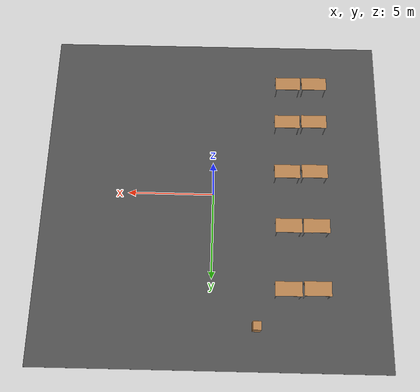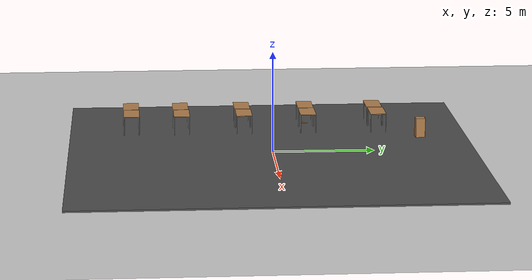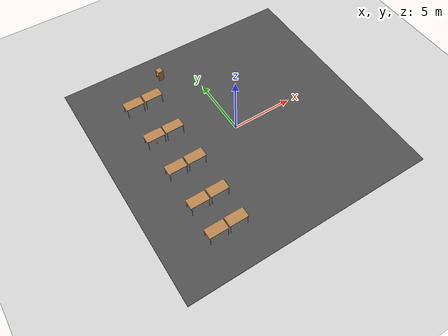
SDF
<sdf version="1.7">
 <world name="default">
  <model name="ground_plane">
   <static>1</static>
   <link name="link">
    <collision name="collision">
     <geometry><plane><normal>0 0 1</normal><size>100 100</size></plane></geometry>
     <surface>
      <contact><collide_bitmask>65535</collide_bitmask></contact>
      <friction><ode><mu>100</mu><mu2>50</mu2></ode></friction>
     </surface>
    </collision>
    <visual name="visual">
     <cast_shadows>0</cast_shadows>
     <geometry><plane><normal>0 0 1</normal><size>100 100</size></plane></geometry>
     <material>
      <script><uri>file://media/materials/scripts/gazebo.material</uri><name>Gazebo/Grey</name></script>
     </material>
    </visual>
   </link>
  </model>
  <model name="asphalt_plane">
   <static>1</static>
   <link name="link">
    <collision name="collision"><geometry><box><size>20 20 0.1</size></box></geometry></collision>
    <visual name="visual">
     <cast_shadows>0</cast_shadows>
     <geometry><box><size>20 20 0.1</size></box></geometry>
     <material>
      <script>
       <uri>model://asphalt_plane/materials/scripts</uri>
       <uri>model://asphalt_plane/materials/textures</uri>
       <name>vrc/asphalt</name>
      </script>
     </material>
    </visual>
   </link>
   <pose>0.032164 -0.016772 0 0 -0 0</pose>
  </model>
  <model name="table_4">
   <static>1</static>
   <link name="link">
    <collision name="surface">
     <pose>0 0 1 0 -0 0</pose>
     <geometry><box><size>1.5 0.8 0.03</size></box></geometry>
     <surface><friction><ode><mu>0.6</mu><mu2>0.6</mu2></ode></friction></surface>
    </collision>
    <visual name="visual1">
     <pose>0 0 1 0 -0 0</pose>
     <geometry><box><size>1.5 0.8 0.03</size></box></geometry>
     <material>
      <script><uri>file://media/materials/scripts/gazebo.material</uri><name>Gazebo/Wood</name></script>
     </material>
    </visual>
    <collision name="front_left_leg">
     <pose>0.68 0.38 0.5 0 -0 0</pose>
     <geometry><cylinder><radius>0.02</radius><length>1</length></cylinder></geometry>
    </collision>
    <visual name="front_left_leg">
     <pose>0.68 0.38 0.5 0 -0 0</pose>
     <geometry><cylinder><radius>0.02</radius><length>1</length></cylinder></geometry>
     <material>
      <script><uri>file://media/materials/scripts/gazebo.material</uri><name>Gazebo/Grey</name></script>
     </material>
    </visual>
    <collision name="front_right_leg">
     <pose>0.68 -0.38 0.5 0 -0 0</pose>
     <geometry><cylinder><radius>0.02</radius><length>1</length></cylinder></geometry>
    </collision>
    <visual name="front_right_leg">
     <pose>0.68 -0.38 0.5 0 -0 0</pose>
     <geometry><cylinder><radius>0.02</radius><length>1</length></cylinder></geometry>
     <material>
      <script><uri>file://media/materials/scripts/gazebo.material</uri><name>Gazebo/Grey</name></script>
     </material>
    </visual>
    <collision name="back_right_leg">
     <pose>-0.68 -0.38 0.5 0 -0 0</pose>
     <geometry><cylinder><radius>0.02</radius><length>1</length></cylinder></geometry>
    </collision>
    <visual name="back_right_leg">
     <pose>-0.68 -0.38 0.5 0 -0 0</pose>
     <geometry><cylinder><radius>0.02</radius><length>1</length></cylinder></geometry>
     <material>
      <script><uri>file://media/materials/scripts/gazebo.material</uri><name>Gazebo/Grey</name></script>
     </material>
    </visual>
    <collision name="back_left_leg">
     <pose>-0.68 0.38 0.5 0 -0 0</pose>
     <geometry><cylinder><radius>0.02</radius><length>1</length></cylinder></geometry>
    </collision>
    <visual name="back_left_leg">
     <pose>-0.68 0.38 0.5 0 -0 0</pose>
     <geometry><cylinder><radius>0.02</radius><length>1</length></cylinder></geometry>
     <material>
      <script><uri>file://media/materials/scripts/gazebo.material</uri><name>Gazebo/Grey</name></script>
     </material>
    </visual>
   </link>
   <pose>-5.982 -6.93187 0 0 -0 0</pose>
  </model>
  <model name="table_5">
   <static>1</static>
   <link name="link">
    <collision name="surface">
     <pose>0 0 1 0 -0 0</pose>
     <geometry><box><size>1.5 0.8 0.03</size></box></geometry>
     <surface><friction><ode><mu>0.6</mu><mu2>0.6</mu2></ode></friction></surface>
    </collision>
    <visual name="visual1">
     <pose>0 0 1 0 -0 0</pose>
     <geometry><box><size>1.5 0.8 0.03</size></box></geometry>
     <material>
      <script><uri>file://media/materials/scripts/gazebo.material</uri><name>Gazebo/Wood</name></script>
     </material>
    </visual>
    <collision name="front_left_leg">
     <pose>0.68 0.38 0.5 0 -0 0</pose>
     <geometry><cylinder><radius>0.02</radius><length>1</length></cylinder></geometry>
    </collision>
    <visual name="front_left_leg">
     <pose>0.68 0.38 0.5 0 -0 0</pose>
     <geometry><cylinder><radius>0.02</radius><length>1</length></cylinder></geometry>
     <material>
      <script><uri>file://media/materials/scripts/gazebo.material</uri><name>Gazebo/Grey</name></script>
     </material>
    </visual>
    <collision name="front_right_leg">
     <pose>0.68 -0.38 0.5 0 -0 0</pose>
     <geometry><cylinder><radius>0.02</radius><length>1</length></cylinder></geometry>
    </collision>
    <visual name="front_right_leg">
     <pose>0.68 -0.38 0.5 0 -0 0</pose>
     <geometry><cylinder><radius>0.02</radius><length>1</length></cylinder></geometry>
     <material>
      <script><uri>file://media/materials/scripts/gazebo.material</uri><name>Gazebo/Grey</name></script>
     </material>
    </visual>
    <collision name="back_right_leg">
     <pose>-0.68 -0.38 0.5 0 -0 0</pose>
     <geometry><cylinder><radius>0.02</radius><length>1</length></cylinder></geometry>
    </collision>
    <visual name="back_right_leg">
     <pose>-0.68 -0.38 0.5 0 -0 0</pose>
     <geometry><cylinder><radius>0.02</radius><length>1</length></cylinder></geometry>
     <material>
      <script><uri>file://media/materials/scripts/gazebo.material</uri><name>Gazebo/Grey</name></script>
     </material>
    </visual>
    <collision name="back_left_leg">
     <pose>-0.68 0.38 0.5 0 -0 0</pose>
     <geometry><cylinder><radius>0.02</radius><length>1</length></cylinder></geometry>
    </collision>
    <visual name="back_left_leg">
     <pose>-0.68 0.38 0.5 0 -0 0</pose>
     <geometry><cylinder><radius>0.02</radius><length>1</length></cylinder></geometry>
     <material>
      <script><uri>file://media/materials/scripts/gazebo.material</uri><name>Gazebo/Grey</name></script>
     </material>
    </visual>
   </link>
   <pose>-5.90789 -4.39985 0 0 -0 0</pose>
  </model>
  <model name="table_6">
   <static>1</static>
   <link name="link">
    <collision name="surface">
     <pose>0 0 1 0 -0 0</pose>
     <geometry><box><size>1.5 0.8 0.03</size></box></geometry>
     <surface><friction><ode><mu>0.6</mu><mu2>0.6</mu2></ode></friction></surface>
    </collision>
    <visual name="visual1">
     <pose>0 0 1 0 -0 0</pose>
     <geometry><box><size>1.5 0.8 0.03</size></box></geometry>
     <material>
      <script><uri>file://media/materials/scripts/gazebo.material</uri><name>Gazebo/Wood</name></script>
     </material>
    </visual>
    <collision name="front_left_leg">
     <pose>0.68 0.38 0.5 0 -0 0</pose>
     <geometry><cylinder><radius>0.02</radius><length>1</length></cylinder></geometry>
    </collision>
    <visual name="front_left_leg">
     <pose>0.68 0.38 0.5 0 -0 0</pose>
     <geometry><cylinder><radius>0.02</radius><length>1</length></cylinder></geometry>
     <material>
      <script><uri>file://media/materials/scripts/gazebo.material</uri><name>Gazebo/Grey</name></script>
     </material>
    </visual>
    <collision name="front_right_leg">
     <pose>0.68 -0.38 0.5 0 -0 0</pose>
     <geometry><cylinder><radius>0.02</radius><length>1</length></cylinder></geometry>
    </collision>
    <visual name="front_right_leg">
     <pose>0.68 -0.38 0.5 0 -0 0</pose>
     <geometry><cylinder><radius>0.02</radius><length>1</length></cylinder></geometry>
     <material>
      <script><uri>file://media/materials/scripts/gazebo.material</uri><name>Gazebo/Grey</name></script>
     </material>
    </visual>
    <collision name="back_right_leg">
     <pose>-0.68 -0.38 0.5 0 -0 0</pose>
     <geometry><cylinder><radius>0.02</radius><length>1</length></cylinder></geometry>
    </collision>
    <visual name="back_right_leg">
     <pose>-0.68 -0.38 0.5 0 -0 0</pose>
     <geometry><cylinder><radius>0.02</radius><length>1</length></cylinder></geometry>
     <material>
      <script><uri>file://media/materials/scripts/gazebo.material</uri><name>Gazebo/Grey</name></script>
     </material>
    </visual>
    <collision name="back_left_leg">
     <pose>-0.68 0.38 0.5 0 -0 0</pose>
     <geometry><cylinder><radius>0.02</radius><length>1</length></cylinder></geometry>
    </collision>
    <visual name="back_left_leg">
     <pose>-0.68 0.38 0.5 0 -0 0</pose>
     <geometry><cylinder><radius>0.02</radius><length>1</length></cylinder></geometry>
     <material>
      <script><uri>file://media/materials/scripts/gazebo.material</uri><name>Gazebo/Grey</name></script>
     </material>
    </visual>
   </link>
   <pose>-5.86238 -1.22885 0 0 -0 0</pose>
  </model>
  <model name="table_7">
   <static>1</static>
   <link name="link">
    <collision name="surface">
     <pose>0 0 1 0 -0 0</pose>
     <geometry><box><size>1.5 0.8 0.03</size></box></geometry>
     <surface><friction><ode><mu>0.6</mu><mu2>0.6</mu2></ode></friction></surface>
    </collision>
    <visual name="visual1">
     <pose>0 0 1 0 -0 0</pose>
     <geometry><box><size>1.5 0.8 0.03</size></box></geometry>
     <material>
      <script><uri>file://media/materials/scripts/gazebo.material</uri><name>Gazebo/Wood</name></script>
     </material>
    </visual>
    <collision name="front_left_leg">
     <pose>0.68 0.38 0.5 0 -0 0</pose>
     <geometry><cylinder><radius>0.02</radius><length>1</length></cylinder></geometry>
    </collision>
    <visual name="front_left_leg">
     <pose>0.68 0.38 0.5 0 -0 0</pose>
     <geometry><cylinder><radius>0.02</radius><length>1</length></cylinder></geometry>
     <material>
      <script><uri>file://media/materials/scripts/gazebo.material</uri><name>Gazebo/Grey</name></script>
     </material>
    </visual>
    <collision name="front_right_leg">
     <pose>0.68 -0.38 0.5 0 -0 0</pose>
     <geometry><cylinder><radius>0.02</radius><length>1</length></cylinder></geometry>
    </collision>
    <visual name="front_right_leg">
     <pose>0.68 -0.38 0.5 0 -0 0</pose>
     <geometry><cylinder><radius>0.02</radius><length>1</length></cylinder></geometry>
     <material>
      <script><uri>file://media/materials/scripts/gazebo.material</uri><name>Gazebo/Grey</name></script>
     </material>
    </visual>
    <collision name="back_right_leg">
     <pose>-0.68 -0.38 0.5 0 -0 0</pose>
     <geometry><cylinder><radius>0.02</radius><length>1</length></cylinder></geometry>
    </collision>
    <visual name="back_right_leg">
     <pose>-0.68 -0.38 0.5 0 -0 0</pose>
     <geometry><cylinder><radius>0.02</radius><length>1</length></cylinder></geometry>
     <material>
      <script><uri>file://media/materials/scripts/gazebo.material</uri><name>Gazebo/Grey</name></script>
     </material>
    </visual>
    <collision name="back_left_leg">
     <pose>-0.68 0.38 0.5 0 -0 0</pose>
     <geometry><cylinder><radius>0.02</radius><length>1</length></cylinder></geometry>
    </collision>
    <visual name="back_left_leg">
     <pose>-0.68 0.38 0.5 0 -0 0</pose>
     <geometry><cylinder><radius>0.02</radius><length>1</length></cylinder></geometry>
     <material>
      <script><uri>file://media/materials/scripts/gazebo.material</uri><name>Gazebo/Grey</name></script>
     </material>
    </visual>
   </link>
   <pose>-5.87096 2.0486 0 0 -0 0</pose>
  </model>
  <model name="table_8">
   <static>1</static>
   <link name="link">
    <collision name="surface">
     <pose>0 0 1 0 -0 0</pose>
     <geometry><box><size>1.5 0.8 0.03</size></box></geometry>
     <surface><friction><ode><mu>0.6</mu><mu2>0.6</mu2></ode></friction></surface>
    </collision>
    <visual name="visual1">
     <pose>0 0 1 0 -0 0</pose>
     <geometry><box><size>1.5 0.8 0.03</size></box></geometry>
     <material>
      <script><uri>file://media/materials/scripts/gazebo.material</uri><name>Gazebo/Wood</name></script>
     </material>
    </visual>
    <collision name="front_left_leg">
     <pose>0.68 0.38 0.5 0 -0 0</pose>
     <geometry><cylinder><radius>0.02</radius><length>1</length></cylinder></geometry>
    </collision>
    <visual name="front_left_leg">
     <pose>0.68 0.38 0.5 0 -0 0</pose>
     <geometry><cylinder><radius>0.02</radius><length>1</length></cylinder></geometry>
     <material>
      <script><uri>file://media/materials/scripts/gazebo.material</uri><name>Gazebo/Grey</name></script>
     </material>
    </visual>
    <collision name="front_right_leg">
     <pose>0.68 -0.38 0.5 0 -0 0</pose>
     <geometry><cylinder><radius>0.02</radius><length>1</length></cylinder></geometry>
    </collision>
    <visual name="front_right_leg">
     <pose>0.68 -0.38 0.5 0 -0 0</pose>
     <geometry><cylinder><radius>0.02</radius><length>1</length></cylinder></geometry>
     <material>
      <script><uri>file://media/materials/scripts/gazebo.material</uri><name>Gazebo/Grey</name></script>
     </material>
    </visual>
    <collision name="back_right_leg">
     <pose>-0.68 -0.38 0.5 0 -0 0</pose>
     <geometry><cylinder><radius>0.02</radius><length>1</length></cylinder></geometry>
    </collision>
    <visual name="back_right_leg">
     <pose>-0.68 -0.38 0.5 0 -0 0</pose>
     <geometry><cylinder><radius>0.02</radius><length>1</length></cylinder></geometry>
     <material>
      <script><uri>file://media/materials/scripts/gazebo.material</uri><name>Gazebo/Grey</name></script>
     </material>
    </visual>
    <collision name="back_left_leg">
     <pose>-0.68 0.38 0.5 0 -0 0</pose>
     <geometry><cylinder><radius>0.02</radius><length>1</length></cylinder></geometry>
    </collision>
    <visual name="back_left_leg">
     <pose>-0.68 0.38 0.5 0 -0 0</pose>
     <geometry><cylinder><radius>0.02</radius><length>1</length></cylinder></geometry>
     <material>
      <script><uri>file://media/materials/scripts/gazebo.material</uri><name>Gazebo/Grey</name></script>
     </material>
    </visual>
   </link>
   <pose>-5.82635 5.59166 0 0 -0 0</pose>
  </model>
  <model name="cabinet_1">
   <static>1</static>
   <link name="cabinet_bottom_plate">
    <inertial>
     <pose>0 0 -1 0 -0 0</pose>
     <inertia><ixx>2.05</ixx><ixy>0</ixy><ixz>0</ixz><iyy>2.05</iyy><iyz>0</iyz><izz>2.05</izz></inertia>
     <mass>25</mass>
    </inertial>
    <collision name="cabinet_bottom_plate_geom">
     <pose>0 0 0.01 0 -0 0</pose>
     <geometry><box><size>0.45 0.45 0.02</size></box></geometry>
    </collision>
    <visual name="cabinet_bottom_plate_geom_visual">
     <pose>0 0 0.01 0 -0 0</pose>
     <geometry><box><size>0.45 0.45 0.02</size></box></geometry>
     <material>
      <script><uri>file://media/materials/scripts/gazebo.material</uri><name>Gazebo/Wood</name></script>
     </material>
    </visual>
    <collision name="cabinet_bottom_plate_geom_cabinet_back_plate">
     <pose>0.235 0 0.51 0 -0 0</pose>
     <geometry><box><size>0.02 0.45 1.02</size></box></geometry>
    </collision>
    <visual name="cabinet_bottom_plate_geom_cabinet_back_plate_visual">
     <pose>0.235 0 0.51 0 -0 0</pose>
     <geometry><box><size>0.02 0.45 1.02</size></box></geometry>
     <material>
      <script><uri>file://media/materials/scripts/gazebo.material</uri><name>Gazebo/Wood</name></script>
     </material>
    </visual>
    <collision name="cabinet_bottom_plate_geom_cabinet_left_plate">
     <pose>0 0.235 0.51 0 -0 0</pose>
     <geometry><box><size>0.45 0.02 1.02</size></box></geometry>
    </collision>
    <visual name="cabinet_bottom_plate_geom_cabinet_left_plate_visual">
     <pose>0 0.235 0.51 0 -0 0</pose>
     <geometry><box><size>0.45 0.02 1.02</size></box></geometry>
     <material>
      <script><uri>file://media/materials/scripts/gazebo.material</uri><name>Gazebo/Wood</name></script>
     </material>
    </visual>
    <collision name="cabinet_bottom_plate_geom_cabinet_middle_plate">
     <pose>0 0 0.51 0 -0 0</pose>
     <geometry><box><size>0.45 0.45 0.02</size></box></geometry>
    </collision>
    <visual name="cabinet_bottom_plate_geom_cabinet_middle_plate_visual">
     <pose>0 0 0.51 0 -0 0</pose>
     <geometry><box><size>0.45 0.45 0.02</size></box></geometry>
     <material>
      <script><uri>file://media/materials/scripts/gazebo.material</uri><name>Gazebo/Wood</name></script>
     </material>
    </visual>
    <collision name="cabinet_bottom_plate_geom_cabinet_right_plate">
     <pose>0 -0.235 0.51 0 -0 0</pose>
     <geometry><box><size>0.45 0.02 1.02</size></box></geometry>
    </collision>
    <visual name="cabinet_bottom_plate_geom_cabinet_right_plate_visual">
     <pose>0 -0.235 0.51 0 -0 0</pose>
     <geometry><box><size>0.45 0.02 1.02</size></box></geometry>
     <material>
      <script><uri>file://media/materials/scripts/gazebo.material</uri><name>Gazebo/Wood</name></script>
     </material>
    </visual>
    <collision name="cabinet_bottom_plate_geom_cabinet_top_plate">
     <pose>0 0 1.01 0 -0 0</pose>
     <geometry><box><size>0.45 0.45 0.02</size></box></geometry>
    </collision>
    <visual name="cabinet_bottom_plate_geom_cabinet_top_plate_visual">
     <pose>0 0 1.01 0 -0 0</pose>
     <geometry><box><size>0.45 0.45 0.02</size></box></geometry>
     <material>
      <script><uri>file://media/materials/scripts/gazebo.material</uri><name>Gazebo/Wood</name></script>
     </material>
    </visual>
   </link>
   <pose>-2.51088 7.6262 0 0 -0 0</pose>
  </model>
  <model name="wooden_peg_board_2">
   <frame name="wooden_board::__model__" attached_to="wooden_board::base">
    <pose relative_to="__model__">0 0 0 0 -0 0</pose>
   </frame>
   <link name="wooden_board::base">
    <pose relative_to="wooden_board::__model__">0 0 0.00523 0 -0 0</pose>
    <inertial>
     <mass>0.2765</mass>
     <inertia>
      <ixx>0.0025148</ixx>
      <ixy>0</ixy>
      <ixz>0</ixz>
      <iyy>0.00024037</iyy>
      <iyz>0</iyz>
      <izz>0.00275013</izz>
     </inertia>
    </inertial>
    <collision name="collision">
     <geometry><box><size>0.1016 0.3302 0.01046</size></box></geometry>
     <surface>
      <contact>
       <poissons_ratio>0.347</poissons_ratio>
       <elastic_modulus>8.8e+09</elastic_modulus>
       <ode><kp>100000</kp><kd>100</kd><max_vel>100</max_vel><min_depth>0.001</min_depth></ode>
      </contact>
      <friction>
       <torsional>
        <coefficient>1</coefficient>
        <use_patch_radius>0</use_patch_radius>
        <surface_radius>0.01</surface_radius>
       </torsional>
      </friction>
     </surface>
    </collision>
    <visual name="visual">
     <geometry><box><size>0.1016 0.3302 0.01046</size></box></geometry>
     <material>
      <script><uri>file://media/materials/scripts/gazebo.material</uri><name>Gazebo/Wood</name></script>
     </material>
    </visual>
    <visual name="tee_nut_1">
     <pose>0 -0.116 0 0 -0 0</pose>
     <geometry><cylinder><radius>0.00635</radius><length>0.0105646</length></cylinder></geometry>
     <material>
      <script><uri>file://media/materials/scripts/gazebo.material</uri><name>Gazebo/Grey</name></script>
     </material>
    </visual>
    <visual name="tee_nut_2">
     <pose>0 -0.038 0 0 -0 0</pose>
     <geometry><cylinder><radius>0.00635</radius><length>0.0105646</length></cylinder></geometry>
     <material>
      <script><uri>file://media/materials/scripts/gazebo.material</uri><name>Gazebo/Grey</name></script>
     </material>
    </visual>
    <visual name="tee_nut_3">
     <pose>0 0.038 0 0 -0 0</pose>
     <geometry><cylinder><radius>0.00635</radius><length>0.0105646</length></cylinder></geometry>
     <material>
      <script><uri>file://media/materials/scripts/gazebo.material</uri><name>Gazebo/Grey</name></script>
     </material>
    </visual>
    <visual name="tee_nut_4">
     <pose>0 0.116 0 0 -0 0</pose>
     <geometry><cylinder><radius>0.00635</radius><length>0.0105646</length></cylinder></geometry>
     <material>
      <script><uri>file://media/materials/scripts/gazebo.material</uri><name>Gazebo/Grey</name></script>
     </material>
    </visual>
   </link>
   <frame name="peg::__model__" attached_to="peg::link">
    <pose relative_to="__model__">0 0.116 0 0 -0 0</pose>
   </frame>
   <link name="peg::link">
    <pose relative_to="peg::__model__">0 0 0.04 0 -0 0</pose>
    <inertial>
     <mass>0.0175</mass>
     <inertia>
      <ixx>9.74923e-06</ixx>
      <ixy>0</ixy>
      <ixz>0</ixz>
      <iyy>9.74923e-06</iyy>
      <iyz>0</iyz>
      <izz>8.31797e-07</izz>
     </inertia>
    </inertial>
    <collision name="collision">
     <geometry><cylinder><radius>0.00975</radius><length>0.08</length></cylinder></geometry>
     <surface>
      <contact>
       <poissons_ratio>0.347</poissons_ratio>
       <elastic_modulus>8.8e+09</elastic_modulus>
       <ode><kp>100000</kp><kd>100</kd><max_vel>100</max_vel><min_depth>0.001</min_depth></ode>
      </contact>
      <friction>
       <torsional>
        <coefficient>1</coefficient>
        <use_patch_radius>0</use_patch_radius>
        <surface_radius>0.01</surface_radius>
       </torsional>
      </friction>
     </surface>
    </collision>
    <visual name="visual">
     <geometry><cylinder><radius>0.00975</radius><length>0.08</length></cylinder></geometry>
     <material>
      <script><uri>file://media/materials/scripts/gazebo.material</uri><name>Gazebo/Wood</name></script>
     </material>
    </visual>
   </link>
   <joint name="board_peg" type="revolute">
    <parent>wooden_board::base</parent>
    <child>peg::link</child>
    <axis>
     <xyz>0 0 1</xyz>
     <limit><upper>0</upper><lower>0</lower></limit>
     <dynamics><spring_reference>0</spring_reference><spring_stiffness>0</spring_stiffness></dynamics>
    </axis>
   </joint>
   <pose>-5.79159 2.06313 0.048997 1.4e-05 3e-06 3.00406</pose>
  </model>
  <model name="table_9">
   <static>1</static>
   <link name="link">
    <collision name="surface">
     <pose>0 0 1 0 -0 0</pose>
     <geometry><box><size>1.5 0.8 0.03</size></box></geometry>
     <surface><friction><ode><mu>0.6</mu><mu2>0.6</mu2></ode></friction></surface>
    </collision>
    <visual name="visual1">
     <pose>0 0 1 0 -0 0</pose>
     <geometry><box><size>1.5 0.8 0.03</size></box></geometry>
     <material>
      <script><uri>file://media/materials/scripts/gazebo.material</uri><name>Gazebo/Wood</name></script>
     </material>
    </visual>
    <collision name="front_left_leg">
     <pose>0.68 0.38 0.5 0 -0 0</pose>
     <geometry><cylinder><radius>0.02</radius><length>1</length></cylinder></geometry>
    </collision>
    <visual name="front_left_leg">
     <pose>0.68 0.38 0.5 0 -0 0</pose>
     <geometry><cylinder><radius>0.02</radius><length>1</length></cylinder></geometry>
     <material>
      <script><uri>file://media/materials/scripts/gazebo.material</uri><name>Gazebo/Grey</name></script>
     </material>
    </visual>
    <collision name="front_right_leg">
     <pose>0.68 -0.38 0.5 0 -0 0</pose>
     <geometry><cylinder><radius>0.02</radius><length>1</length></cylinder></geometry>
    </collision>
    <visual name="front_right_leg">
     <pose>0.68 -0.38 0.5 0 -0 0</pose>
     <geometry><cylinder><radius>0.02</radius><length>1</length></cylinder></geometry>
     <material>
      <script><uri>file://media/materials/scripts/gazebo.material</uri><name>Gazebo/Grey</name></script>
     </material>
    </visual>
    <collision name="back_right_leg">
     <pose>-0.68 -0.38 0.5 0 -0 0</pose>
     <geometry><cylinder><radius>0.02</radius><length>1</length></cylinder></geometry>
    </collision>
    <visual name="back_right_leg">
     <pose>-0.68 -0.38 0.5 0 -0 0</pose>
     <geometry><cylinder><radius>0.02</radius><length>1</length></cylinder></geometry>
     <material>
      <script><uri>file://media/materials/scripts/gazebo.material</uri><name>Gazebo/Grey</name></script>
     </material>
    </visual>
    <collision name="back_left_leg">
     <pose>-0.68 0.38 0.5 0 -0 0</pose>
     <geometry><cylinder><radius>0.02</radius><length>1</length></cylinder></geometry>
    </collision>
    <visual name="back_left_leg">
     <pose>-0.68 0.38 0.5 0 -0 0</pose>
     <geometry><cylinder><radius>0.02</radius><length>1</length></cylinder></geometry>
     <material>
      <script><uri>file://media/materials/scripts/gazebo.material</uri><name>Gazebo/Grey</name></script>
     </material>
    </visual>
   </link>
   <pose>-4.31791 -4.3654 0 0 -0 0</pose>
  </model>
  <model name="table_10">
   <static>1</static>
   <link name="link">
    <collision name="surface">
     <pose>0 0 1 0 -0 0</pose>
     <geometry><box><size>1.5 0.8 0.03</size></box></geometry>
     <surface><friction><ode><mu>0.6</mu><mu2>0.6</mu2></ode></friction></surface>
    </collision>
    <visual name="visual1">
     <pose>0 0 1 0 -0 0</pose>
     <geometry><box><size>1.5 0.8 0.03</size></box></geometry>
     <material>
      <script><uri>file://media/materials/scripts/gazebo.material</uri><name>Gazebo/Wood</name></script>
     </material>
    </visual>
    <collision name="front_left_leg">
     <pose>0.68 0.38 0.5 0 -0 0</pose>
     <geometry><cylinder><radius>0.02</radius><length>1</length></cylinder></geometry>
    </collision>
    <visual name="front_left_leg">
     <pose>0.68 0.38 0.5 0 -0 0</pose>
     <geometry><cylinder><radius>0.02</radius><length>1</length></cylinder></geometry>
     <material>
      <script><uri>file://media/materials/scripts/gazebo.material</uri><name>Gazebo/Grey</name></script>
     </material>
    </visual>
    <collision name="front_right_leg">
     <pose>0.68 -0.38 0.5 0 -0 0</pose>
     <geometry><cylinder><radius>0.02</radius><length>1</length></cylinder></geometry>
    </collision>
    <visual name="front_right_leg">
     <pose>0.68 -0.38 0.5 0 -0 0</pose>
     <geometry><cylinder><radius>0.02</radius><length>1</length></cylinder></geometry>
     <material>
      <script><uri>file://media/materials/scripts/gazebo.material</uri><name>Gazebo/Grey</name></script>
     </material>
    </visual>
    <collision name="back_right_leg">
     <pose>-0.68 -0.38 0.5 0 -0 0</pose>
     <geometry><cylinder><radius>0.02</radius><length>1</length></cylinder></geometry>
    </collision>
    <visual name="back_right_leg">
     <pose>-0.68 -0.38 0.5 0 -0 0</pose>
     <geometry><cylinder><radius>0.02</radius><length>1</length></cylinder></geometry>
     <material>
      <script><uri>file://media/materials/scripts/gazebo.material</uri><name>Gazebo/Grey</name></script>
     </material>
    </visual>
    <collision name="back_left_leg">
     <pose>-0.68 0.38 0.5 0 -0 0</pose>
     <geometry><cylinder><radius>0.02</radius><length>1</length></cylinder></geometry>
    </collision>
    <visual name="back_left_leg">
     <pose>-0.68 0.38 0.5 0 -0 0</pose>
     <geometry><cylinder><radius>0.02</radius><length>1</length></cylinder></geometry>
     <material>
      <script><uri>file://media/materials/scripts/gazebo.material</uri><name>Gazebo/Grey</name></script>
     </material>
    </visual>
   </link>
   <pose>-4.39759 -6.9083 0 0 -0 0</pose>
  </model>
  <model name="table_11">
   <static>1</static>
   <link name="link">
    <collision name="surface">
     <pose>0 0 1 0 -0 0</pose>
     <geometry><box><size>1.5 0.8 0.03</size></box></geometry>
     <surface><friction><ode><mu>0.6</mu><mu2>0.6</mu2></ode></friction></surface>
    </collision>
    <visual name="visual1">
     <pose>0 0 1 0 -0 0</pose>
     <geometry><box><size>1.5 0.8 0.03</size></box></geometry>
     <material>
      <script><uri>file://media/materials/scripts/gazebo.material</uri><name>Gazebo/Wood</name></script>
     </material>
    </visual>
    <collision name="front_left_leg">
     <pose>0.68 0.38 0.5 0 -0 0</pose>
     <geometry><cylinder><radius>0.02</radius><length>1</length></cylinder></geometry>
    </collision>
    <visual name="front_left_leg">
     <pose>0.68 0.38 0.5 0 -0 0</pose>
     <geometry><cylinder><radius>0.02</radius><length>1</length></cylinder></geometry>
     <material>
      <script><uri>file://media/materials/scripts/gazebo.material</uri><name>Gazebo/Grey</name></script>
     </material>
    </visual>
    <collision name="front_right_leg">
     <pose>0.68 -0.38 0.5 0 -0 0</pose>
     <geometry><cylinder><radius>0.02</radius><length>1</length></cylinder></geometry>
    </collision>
    <visual name="front_right_leg">
     <pose>0.68 -0.38 0.5 0 -0 0</pose>
     <geometry><cylinder><radius>0.02</radius><length>1</length></cylinder></geometry>
     <material>
      <script><uri>file://media/materials/scripts/gazebo.material</uri><name>Gazebo/Grey</name></script>
     </material>
    </visual>
    <collision name="back_right_leg">
     <pose>-0.68 -0.38 0.5 0 -0 0</pose>
     <geometry><cylinder><radius>0.02</radius><length>1</length></cylinder></geometry>
    </collision>
    <visual name="back_right_leg">
     <pose>-0.68 -0.38 0.5 0 -0 0</pose>
     <geometry><cylinder><radius>0.02</radius><length>1</length></cylinder></geometry>
     <material>
      <script><uri>file://media/materials/scripts/gazebo.material</uri><name>Gazebo/Grey</name></script>
     </material>
    </visual>
    <collision name="back_left_leg">
     <pose>-0.68 0.38 0.5 0 -0 0</pose>
     <geometry><cylinder><radius>0.02</radius><length>1</length></cylinder></geometry>
    </collision>
    <visual name="back_left_leg">
     <pose>-0.68 0.38 0.5 0 -0 0</pose>
     <geometry><cylinder><radius>0.02</radius><length>1</length></cylinder></geometry>
     <material>
      <script><uri>file://media/materials/scripts/gazebo.material</uri><name>Gazebo/Grey</name></script>
     </material>
    </visual>
   </link>
   <pose>-4.26853 -1.1949 0 0 -0 0</pose>
  </model>
  <model name="table_12">
   <static>1</static>
   <link name="link">
    <collision name="surface">
     <pose>0 0 1 0 -0 0</pose>
     <geometry><box><size>1.5 0.8 0.03</size></box></geometry>
     <surface><friction><ode><mu>0.6</mu><mu2>0.6</mu2></ode></friction></surface>
    </collision>
    <visual name="visual1">
     <pose>0 0 1 0 -0 0</pose>
     <geometry><box><size>1.5 0.8 0.03</size></box></geometry>
     <material>
      <script><uri>file://media/materials/scripts/gazebo.material</uri><name>Gazebo/Wood</name></script>
     </material>
    </visual>
    <collision name="front_left_leg">
     <pose>0.68 0.38 0.5 0 -0 0</pose>
     <geometry><cylinder><radius>0.02</radius><length>1</length></cylinder></geometry>
    </collision>
    <visual name="front_left_leg">
     <pose>0.68 0.38 0.5 0 -0 0</pose>
     <geometry><cylinder><radius>0.02</radius><length>1</length></cylinder></geometry>
     <material>
      <script><uri>file://media/materials/scripts/gazebo.material</uri><name>Gazebo/Grey</name></script>
     </material>
    </visual>
    <collision name="front_right_leg">
     <pose>0.68 -0.38 0.5 0 -0 0</pose>
     <geometry><cylinder><radius>0.02</radius><length>1</length></cylinder></geometry>
    </collision>
    <visual name="front_right_leg">
     <pose>0.68 -0.38 0.5 0 -0 0</pose>
     <geometry><cylinder><radius>0.02</radius><length>1</length></cylinder></geometry>
     <material>
      <script><uri>file://media/materials/scripts/gazebo.material</uri><name>Gazebo/Grey</name></script>
     </material>
    </visual>
    <collision name="back_right_leg">
     <pose>-0.68 -0.38 0.5 0 -0 0</pose>
     <geometry><cylinder><radius>0.02</radius><length>1</length></cylinder></geometry>
    </collision>
    <visual name="back_right_leg">
     <pose>-0.68 -0.38 0.5 0 -0 0</pose>
     <geometry><cylinder><radius>0.02</radius><length>1</length></cylinder></geometry>
     <material>
      <script><uri>file://media/materials/scripts/gazebo.material</uri><name>Gazebo/Grey</name></script>
     </material>
    </visual>
    <collision name="back_left_leg">
     <pose>-0.68 0.38 0.5 0 -0 0</pose>
     <geometry><cylinder><radius>0.02</radius><length>1</length></cylinder></geometry>
    </collision>
    <visual name="back_left_leg">
     <pose>-0.68 0.38 0.5 0 -0 0</pose>
     <geometry><cylinder><radius>0.02</radius><length>1</length></cylinder></geometry>
     <material>
      <script><uri>file://media/materials/scripts/gazebo.material</uri><name>Gazebo/Grey</name></script>
     </material>
    </visual>
   </link>
   <pose>-4.30579 2.06085 0 0 -0 0</pose>
  </model>
  <model name="table_13">
   <static>1</static>
   <link name="link">
    <collision name="surface">
     <pose>0 0 1 0 -0 0</pose>
     <geometry><box><size>1.5 0.8 0.03</size></box></geometry>
     <surface><friction><ode><mu>0.6</mu><mu2>0.6</mu2></ode></friction></surface>
    </collision>
    <visual name="visual1">
     <pose>0 0 1 0 -0 0</pose>
     <geometry><box><size>1.5 0.8 0.03</size></box></geometry>
     <material>
      <script><uri>file://media/materials/scripts/gazebo.material</uri><name>Gazebo/Wood</name></script>
     </material>
    </visual>
    <collision name="front_left_leg">
     <pose>0.68 0.38 0.5 0 -0 0</pose>
     <geometry><cylinder><radius>0.02</radius><length>1</length></cylinder></geometry>
    </collision>
    <visual name="front_left_leg">
     <pose>0.68 0.38 0.5 0 -0 0</pose>
     <geometry><cylinder><radius>0.02</radius><length>1</length></cylinder></geometry>
     <material>
      <script><uri>file://media/materials/scripts/gazebo.material</uri><name>Gazebo/Grey</name></script>
     </material>
    </visual>
    <collision name="front_right_leg">
     <pose>0.68 -0.38 0.5 0 -0 0</pose>
     <geometry><cylinder><radius>0.02</radius><length>1</length></cylinder></geometry>
    </collision>
    <visual name="front_right_leg">
     <pose>0.68 -0.38 0.5 0 -0 0</pose>
     <geometry><cylinder><radius>0.02</radius><length>1</length></cylinder></geometry>
     <material>
      <script><uri>file://media/materials/scripts/gazebo.material</uri><name>Gazebo/Grey</name></script>
     </material>
    </visual>
    <collision name="back_right_leg">
     <pose>-0.68 -0.38 0.5 0 -0 0</pose>
     <geometry><cylinder><radius>0.02</radius><length>1</length></cylinder></geometry>
    </collision>
    <visual name="back_right_leg">
     <pose>-0.68 -0.38 0.5 0 -0 0</pose>
     <geometry><cylinder><radius>0.02</radius><length>1</length></cylinder></geometry>
     <material>
      <script><uri>file://media/materials/scripts/gazebo.material</uri><name>Gazebo/Grey</name></script>
     </material>
    </visual>
    <collision name="back_left_leg">
     <pose>-0.68 0.38 0.5 0 -0 0</pose>
     <geometry><cylinder><radius>0.02</radius><length>1</length></cylinder></geometry>
    </collision>
    <visual name="back_left_leg">
     <pose>-0.68 0.38 0.5 0 -0 0</pose>
     <geometry><cylinder><radius>0.02</radius><length>1</length></cylinder></geometry>
     <material>
      <script><uri>file://media/materials/scripts/gazebo.material</uri><name>Gazebo/Grey</name></script>
     </material>
    </visual>
   </link>
   <pose>-4.22902 5.63063 0 0 -0 0</pose>
  </model>
 </world>
</sdf>
